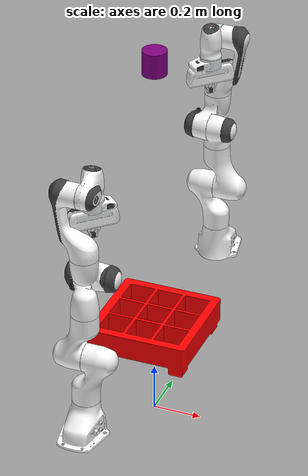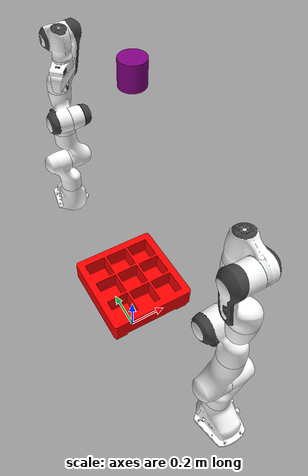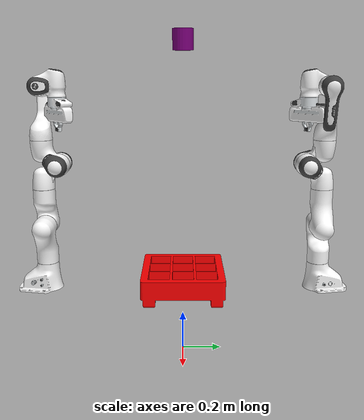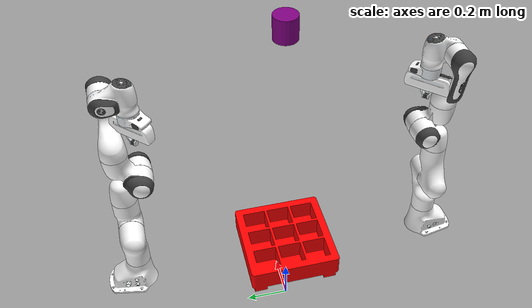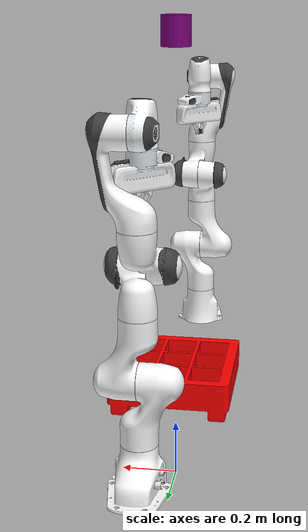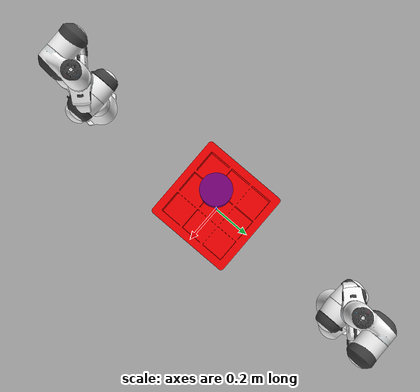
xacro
<?xml version="1.0"?>
<robot xmlns:xacro="http://www.ros.org/wiki/xacro" name="dual_panda">

  <!-- Launch argument for Gazebo version -->
  <xacro:arg name="is_ignition" default="true"/>

  <!-- World Link -->
  <link name="world"/>

  <!-- Include materials -->
  <xacro:include filename="$(find panda_description)/urdf/materials.xacro" />

  <!-- Include the panda arm macro -->
  <xacro:include filename="$(find panda_description)/urdf/panda_arm.xacro"/>

  <xacro:include filename="$(find panda_description)/urdf/sensors.xacro" />

  <!-- Include gazebo ros2_control plugin -->
  <xacro:include filename="$(find panda_description)/urdf/gazebo.xacro"/>

  <!-- Include ros2_control (if ros2control.xacro is available) -->
  <xacro:include filename="$(find panda_description)/urdf/ros2control.xacro"/>

  <xacro:include filename="$(find panda_description)/urdf/tic_tac_board.xacro"/>

  <!-- First Panda Robot (left side, facing right) -->
  <xacro:panda_arm arm_id="panda_1" parent="world" is_ignition="$(arg is_ignition)">
    <origin xyz="0 0.7 0.35" rpy="0 0 -1.5708"/>
  </xacro:panda_arm>

  <!-- Second Panda Robot (right side, facing left) -->
  <xacro:panda_arm arm_id="panda_2" parent="world" is_ignition="$(arg is_ignition)">
    <origin xyz="0 -0.7 0.35" rpy="0 0 1.5708"/>
  </xacro:panda_arm>

</robot>

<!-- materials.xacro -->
<robot xmlns:xacro="http://www.ros.org/wiki/xacro">

  <material name="red">
    <color rgba="1.0 0.0 0.0 1.000"/>
  </material>

  <material name="green">
    <color rgba="0.0 1.0 0.0 1.000"/>
  </material>

  <material name="blue">
    <color rgba="0.0 0.0 1.0 1.000"/>
  </material>

  <material name="yellow">
    <color rgba="1.0 1.0 0.0 1.000"/>
  </material>

  <material name="purple">
    <color rgba="0.5 0.0 0.5 1.000"/>
  </material>

</robot>

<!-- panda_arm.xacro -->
<robot xmlns:xacro="http://www.ros.org/wiki/xacro">

  <!-- Panda Arm Macro with sensors and ros2_control integration -->
  <xacro:macro name="panda_arm" params="arm_id parent is_ignition:=false *origin">

    <!-- Link 0 - Base -->
    <link name="${arm_id}_link0">
      <visual>
        <geometry>
          <mesh filename="package://panda_description/meshes/visual/link0.dae"/>
        </geometry>
      </visual>
      <collision>
        <geometry>
          <mesh filename="package://panda_description/meshes/collision/link0.obj"/>
        </geometry>
      </collision>
      <inertial>
        <origin xyz="0 0 0" rpy="0.0 0.0 0.0"/>
        <mass value="0.1"/>
        <inertia ixx="0.1" ixy="0.0" ixz="0.0" iyy="0.1" iyz="0.0" izz="0.1"/>
      </inertial>
    </link>

    <!-- Base Joint connecting to parent -->
    <joint name="${arm_id}_base_joint" type="fixed">
      <parent link="${parent}"/>
      <child link="${arm_id}_link0"/>
      <xacro:insert_block name="origin"/>
    </joint>

    <!-- Link 1 -->
    <link name="${arm_id}_link1">
      <visual>
        <geometry>
          <mesh filename="package://panda_description/meshes/visual/link1.dae"/>
        </geometry>
      </visual>
      <collision>
        <geometry>
          <mesh filename="package://panda_description/meshes/collision/link1.obj"/>
        </geometry>
      </collision>
      <inertial>
        <origin xyz="0 0 0" rpy="0.0 0.0 0.0"/>
        <mass value="0.1"/>
        <inertia ixx="0.1" ixy="0.0" ixz="0.0" iyy="0.1" iyz="0.0" izz="0.1"/>
      </inertial>
    </link>

    <!-- Joint 1 -->
    <joint name="${arm_id}_joint1" type="revolute">
      <safety_controller k_position="100.0" k_velocity="40.0" soft_lower_limit="-2.8973" soft_upper_limit="2.8973"/>
      <origin rpy="0 0 0" xyz="0 0 0.333"/>
      <parent link="${arm_id}_link0"/>
      <child link="${arm_id}_link1"/>
      <axis xyz="0 0 1"/>
      <limit effort="30.0" lower="-2.9671" upper="2.9671" velocity="10.0"/>
    </joint>

    <!-- Link 2 -->
    <link name="${arm_id}_link2">
      <visual>
        <geometry>
          <mesh filename="package://panda_description/meshes/visual/link2.dae"/>
        </geometry>
      </visual>
      <collision>
        <geometry>
          <mesh filename="package://panda_description/meshes/collision/link2.obj"/>
        </geometry>
      </collision>
      <inertial>
        <origin xyz="0 0 0" rpy="0.0 0.0 0.0"/>
        <mass value="0.1"/>
        <inertia ixx="0.1" ixy="0.0" ixz="0.0" iyy="0.1" iyz="0.0" izz="0.1"/>
      </inertial>
    </link>

    <!-- Joint 2 -->
    <joint name="${arm_id}_joint2" type="revolute">
      <safety_controller k_position="100.0" k_velocity="40.0" soft_lower_limit="-1.7628" soft_upper_limit="1.7628"/>
      <origin rpy="-1.57079632679 0 0" xyz="0 0 0"/>
      <parent link="${arm_id}_link1"/>
      <child link="${arm_id}_link2"/>
      <axis xyz="0 0 1"/>
      <limit effort="30.0" lower="-1.8326" upper="1.8326" velocity="10.0"/>
    </joint>

    <!-- Link 3 -->
    <link name="${arm_id}_link3">
      <visual>
        <geometry>
          <mesh filename="package://panda_description/meshes/visual/link3.dae"/>
        </geometry>
      </visual>
      <collision>
        <geometry>
          <mesh filename="package://panda_description/meshes/collision/link3.obj"/>
        </geometry>
      </collision>
      <inertial>
        <origin xyz="0 0 0" rpy="0.0 0.0 0.0"/>
        <mass value="0.1"/>
        <inertia ixx="0.1" ixy="0.0" ixz="0.0" iyy="0.1" iyz="0.0" izz="0.1"/>
      </inertial>
    </link>

    <!-- Joint 3 -->
    <joint name="${arm_id}_joint3" type="revolute">
      <safety_controller k_position="100.0" k_velocity="40.0" soft_lower_limit="-2.8973" soft_upper_limit="2.8973"/>
      <origin rpy="1.57079632679 0 0" xyz="0 -0.316 0"/>
      <parent link="${arm_id}_link2"/>
      <child link="${arm_id}_link3"/>
      <axis xyz="0 0 1"/>
      <limit effort="30.0" lower="-2.9671" upper="2.9671" velocity="10.0"/>
    </joint>

    <!-- Link 4 -->
    <link name="${arm_id}_link4">
      <visual>
        <geometry>
          <mesh filename="package://panda_description/meshes/visual/link4.dae"/>
        </geometry>
      </visual>
      <collision>
        <geometry>
          <mesh filename="package://panda_description/meshes/collision/link4.obj"/>
        </geometry>
      </collision>
      <inertial>
        <origin xyz="0 0 0" rpy="0.0 0.0 0.0"/>
        <mass value="0.1"/>
        <inertia ixx="0.1" ixy="0.0" ixz="0.0" iyy="0.1" iyz="0.0" izz="0.1"/>
      </inertial>
    </link>

    <!-- Joint 4 -->
    <joint name="${arm_id}_joint4" type="revolute">
      <safety_controller k_position="100.0" k_velocity="40.0" soft_lower_limit="-3.0718" soft_upper_limit="-0.0698"/>
      <origin rpy="1.57079632679 0 0" xyz="0.0825 0 0"/>
      <parent link="${arm_id}_link3"/>
      <child link="${arm_id}_link4"/>
      <axis xyz="0 0 1"/>
      <limit effort="30.0" lower="-3.1416" upper="0.0" velocity="10.0"/>
    </joint>

    <!-- Link 5 -->
    <link name="${arm_id}_link5">
      <visual>
        <geometry>
          <mesh filename="package://panda_description/meshes/visual/link5.dae"/>
        </geometry>
      </visual>
      <collision>
        <geometry>
          <mesh filename="package://panda_description/meshes/collision/link5.obj"/>
        </geometry>
      </collision>
      <inertial>
        <origin xyz="0 0 0" rpy="0.0 0.0 0.0"/>
        <mass value="0.1"/>
        <inertia ixx="0.1" ixy="0.0" ixz="0.0" iyy="0.1" iyz="0.0" izz="0.1"/>
      </inertial>
    </link>

    <!-- Joint 5 -->
    <joint name="${arm_id}_joint5" type="revolute">
      <safety_controller k_position="100.0" k_velocity="40.0" soft_lower_limit="-2.8973" soft_upper_limit="2.8973"/>
      <origin rpy="-1.57079632679 0 0" xyz="-0.0825 0.384 0"/>
      <parent link="${arm_id}_link4"/>
      <child link="${arm_id}_link5"/>
      <axis xyz="0 0 1"/>
      <limit effort="30.0" lower="-2.9671" upper="2.9671" velocity="10.0"/>
    </joint>

    <!-- Link 6 -->
    <link name="${arm_id}_link6">
      <visual>
        <geometry>
          <mesh filename="package://panda_description/meshes/visual/link6.dae"/>
        </geometry>
      </visual>
      <collision>
        <geometry>
          <mesh filename="package://panda_description/meshes/collision/link6.obj"/>
        </geometry>
      </collision>
      <inertial>
        <origin xyz="0 0 0" rpy="0.0 0.0 0.0"/>
        <mass value="0.1"/>
        <inertia ixx="0.1" ixy="0.0" ixz="0.0" iyy="0.1" iyz="0.0" izz="0.1"/>
      </inertial>
    </link>

    <!-- Joint 6 -->
    <joint name="${arm_id}_joint6" type="revolute">
      <safety_controller k_position="100.0" k_velocity="40.0" soft_lower_limit="-0.0175" soft_upper_limit="3.7525"/>
      <origin rpy="1.57079632679 0 0" xyz="0 0 0"/>
      <parent link="${arm_id}_link5"/>
      <child link="${arm_id}_link6"/>
      <axis xyz="0 0 1"/>
      <limit effort="30.0" lower="-0.0873" upper="3.8223" velocity="10.0"/>
    </joint>

    <!-- Link 7 -->
    <link name="${arm_id}_link7">
      <visual>
        <geometry>
          <mesh filename="package://panda_description/meshes/visual/link7.dae"/>
        </geometry>
      </visual>
      <collision>
        <geometry>
          <mesh filename="package://panda_description/meshes/collision/link7.obj"/>
        </geometry>
      </collision>
      <inertial>
        <origin xyz="0 0 0" rpy="0.0 0.0 0.0"/>
        <mass value="0.1"/>
        <inertia ixx="0.1" ixy="0.0" ixz="0.0" iyy="0.1" iyz="0.0" izz="0.1"/>
      </inertial>
    </link>

    <!-- Joint 7 -->
    <joint name="${arm_id}_joint7" type="revolute">
      <safety_controller k_position="100.0" k_velocity="40.0" soft_lower_limit="-2.8973" soft_upper_limit="2.8973"/>
      <origin rpy="1.57079632679 0 0" xyz="0.088 0 0"/>
      <parent link="${arm_id}_link6"/>
      <child link="${arm_id}_link7"/>
      <axis xyz="0 0 1"/>
      <limit effort="30.0" lower="-2.9671" upper="2.9671" velocity="10.0"/>
    </joint>

    <!-- Hand Link -->
    <link name="${arm_id}_hand">
      <visual>
        <geometry>
          <mesh filename="package://panda_description/meshes/visual/hand.dae"/>
        </geometry>
      </visual>
      <collision>
        <geometry>
          <mesh filename="package://panda_description/meshes/collision/hand.obj"/>
        </geometry>
      </collision>
      <inertial>
        <origin xyz="0 0 0" rpy="0.0 0.0 0.0"/>
        <mass value="0.1"/>
        <inertia ixx="0.1" ixy="0.0" ixz="0.0" iyy="0.1" iyz="0.0" izz="0.1"/>
      </inertial>
    </link>

    <!-- Hand Joint -->
    <joint name="${arm_id}_hand_joint" type="fixed">
      <parent link="${arm_id}_link7"/>
      <child link="${arm_id}_hand"/>
      <origin rpy="0 0 -0.785398163397" xyz="0 0 0.106"/>
    </joint>

    <!-- Left Finger Link -->
    <link name="${arm_id}_leftfinger">
      <visual>
        <geometry>
          <mesh filename="package://panda_description/meshes/visual/finger.dae"/>
        </geometry>
      </visual>
      <collision>
        <geometry>
          <mesh filename="package://panda_description/meshes/collision/finger.obj"/>
        </geometry>
      </collision>
      <inertial>
        <origin xyz="0 0 0" rpy="0.0 0.0 0.0"/>
        <mass value="0.1"/>
        <inertia ixx="0.1" ixy="0.0" ixz="0.0" iyy="0.1" iyz="0.0" izz="0.1"/>
      </inertial>
    </link>

    <!-- Right Finger Link -->
    <link name="${arm_id}_rightfinger">
      <visual>
        <origin rpy="0 0 3.14159265359" xyz="0 0 0"/>
        <geometry>
          <mesh filename="package://panda_description/meshes/visual/finger.dae"/>
        </geometry>
      </visual>
      <collision>
        <origin rpy="0 0 3.14159265359" xyz="0 0 0"/>
        <geometry>
          <mesh filename="package://panda_description/meshes/collision/finger.obj"/>
        </geometry>
      </collision>
      <inertial>
        <origin xyz="0 0 0" rpy="0.0 0.0 0.0"/>
        <mass value="0.1"/>
        <inertia ixx="0.1" ixy="0.0" ixz="0.0" iyy="0.1" iyz="0.0" izz="0.1"/>
      </inertial>
    </link>

    <!-- Finger Joint 1 -->
    <joint name="${arm_id}_finger_joint1" type="prismatic">
      <parent link="${arm_id}_hand"/>
      <child link="${arm_id}_leftfinger"/>
      <origin rpy="0 0 0" xyz="0 0 0.0584"/>
      <axis xyz="0 1 0"/>
      <limit effort="30.0" lower="0.0" upper="0.04" velocity="10.0"/>
    </joint>

    <!-- Finger Joint 2 -->
    <joint name="${arm_id}_finger_joint2" type="prismatic">
      <parent link="${arm_id}_hand"/>
      <child link="${arm_id}_rightfinger"/>
      <origin rpy="0 0 0" xyz="0 0 0.0584"/>
      <axis xyz="0 -1 0"/>
      <limit effort="30.0" lower="0.0" upper="0.04" velocity="10.0"/>
    </joint>

  </xacro:macro>

</robot>

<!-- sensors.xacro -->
<robot xmlns:xacro="http://www.ros.org/wiki/xacro">

    <link name="camera_link">
        <inertial>
            <origin xyz="0 0 0" rpy="0.0 0.0 0.0"/>
            <mass value="0.1"/>
            <inertia ixx="0.1" ixy="0.0" ixz="0.0" iyy="0.1" iyz="0.0" izz="0.1"/>
        </inertial>

        <visual>
            <origin xyz="0 0 0" rpy="0.0 0.0 0.0"/>
            <geometry>
                <cylinder radius="0.05" length="0.1"/>
            </geometry>
            <material name="purple"/>
        </visual>

        <collision>
            <origin xyz="0 0 0" rpy="0.0 0.0 0.0"/>
            <geometry>
                <cylinder radius="0.05" length="0.1"/>
            </geometry>
            <material name="purple"/>
        </collision>
    </link>

    <joint name="camera_joint" type="fixed">
        <origin xyz="0.0 0 1.6" rpy="0.0 0.0 0.0"/>
        <parent link="world"/>
        <child link="camera_link"/>
    </joint>

    <link name="camera_link_optical" />

    <joint name="camera_optical_joint" type="fixed">
        <parent link="camera_link"/>
        <child link="camera_link_optical"/>
        <origin xyz="0 0 0" rpy="${-pi/2} 0 ${-pi/2}"/>
    </joint>

    <gazebo reference="camera_link">
        <sensor name="camera" type="camera">
            <pose>0 0 0 0 1.57 0</pose>
            <visualize>true</visualize>
            <update_rate>10.0</update_rate>
            <alwaysOn>true</alwaysOn>
            <topic>camera/image_raw</topic>
            <gz_frame_id>camera_link_optical</gz_frame_id>
            <camera name="intel_realsense_r200">
                <camera_info_topic>camera/camera_info</camera_info_topic>
                <horizontal_fov>1.0</horizontal_fov>
                <image>
                    <width>640</width>
                    <height>320</height>
                    <format>R8G8B8</format>
                </image>
                <clip>
                    <near>0.05</near>
                    <far>8.0</far>
                </clip>
            </camera>
        </sensor>
    </gazebo>

</robot>

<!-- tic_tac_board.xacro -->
<robot xmlns:xacro="http://www.ros.org/wiki/xacro">

    <!-- Tic_Tac_Toe Board fixed on table wrt to world -->
    <link name="tic_tac_toe_board_link">
        <inertial>
            <origin xyz="0 0 0" rpy="0.0 0.0 0.0"/>
            <mass value="0.1"/>
            <inertia ixx="0.1" ixy="0.0" ixz="0.0" iyy="0.1" iyz="0.0" izz="0.1"/>
        </inertial>
        <visual>
            <origin xyz="0 0 0" rpy="0.0 0.0 0.0"/>
            <geometry>
                <mesh filename="package://panda_description/meshes/visual/tic_tac_toe_board_150.stl" scale="0.0006 0.0006 0.0006"/>
            </geometry>
            <material name="red"/>
        </visual>
        <collision>
            <origin xyz="0 0 0" rpy="0.0 0.0 0.0"/>
            <geometry>
                <mesh filename="package://panda_description/meshes/collision/tic_tac_toe_board_150.stl" scale="0.0006 0.0006 0.0006"/>
            </geometry>
            <material name="red"/>
        </collision>
    </link>

    <joint name="tic_tac_board_joint" type="fixed">
        <origin xyz="0.0 0 0.36" rpy="0.0 0.0 0.0"/>
        <parent link="world"/>
        <child link="tic_tac_toe_board_link"/>
    </joint>

</robot>
